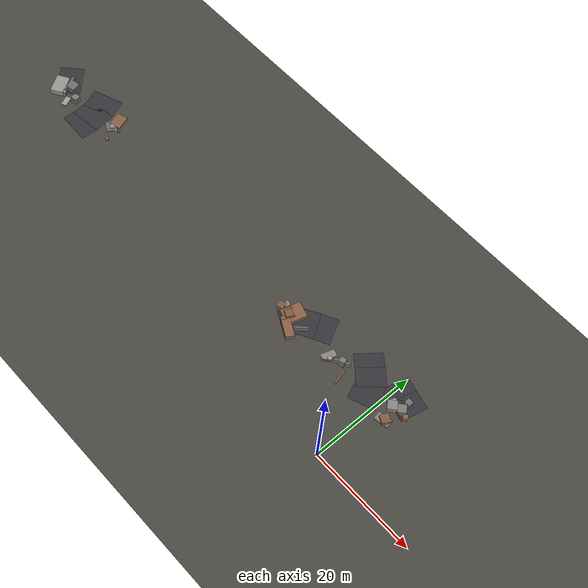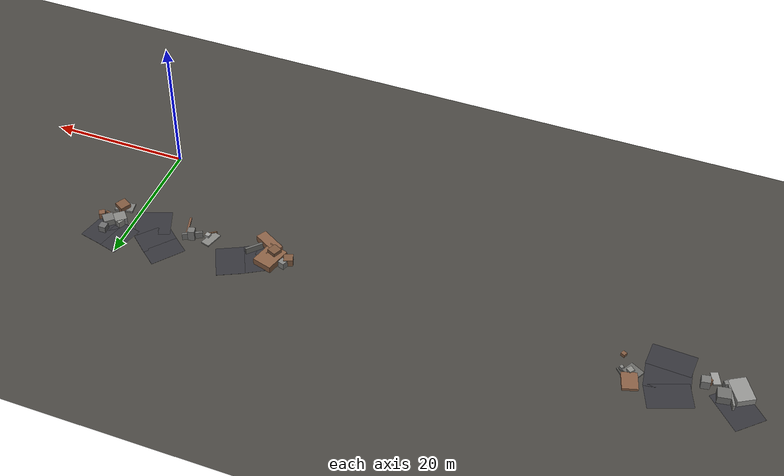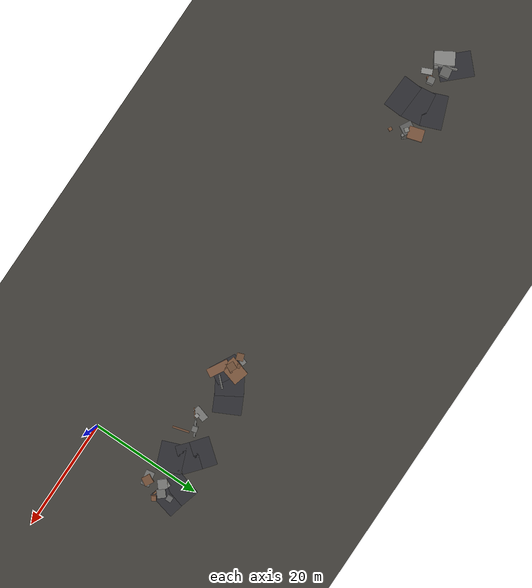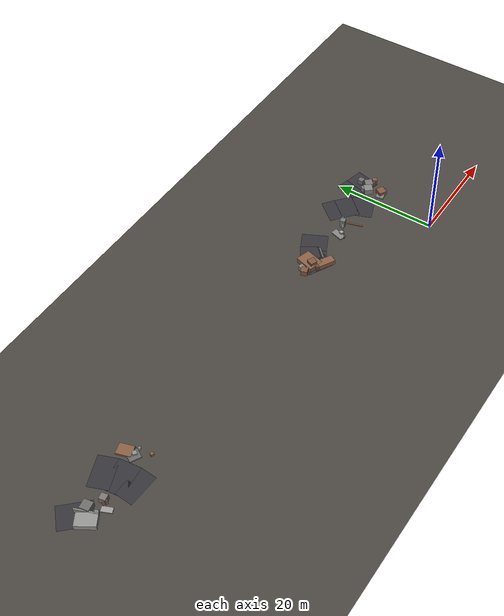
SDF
<sdf version="1.6">
 <world name="navitas_arena">
  <model name="ground_plane">
   <static>true</static>
   <link name="link">
    <collision name="collision">
     <geometry><plane><normal>0 0 1</normal><size>400 400</size></plane></geometry>
     <surface><friction><ode><mu>0.820</mu><mu2>0.820</mu2></ode></friction></surface>
    </collision>
    <visual name="visual">
     <cast_shadows>false</cast_shadows>
     <geometry><plane><normal>0 0 1</normal><size>400 400</size></plane></geometry>
     <material><ambient>0.280 0.270 0.250 1</ambient><diffuse>0.280 0.270 0.250 1</diffuse></material>
    </visual>
   </link>
  </model>
  <model name="road_kolay_2_15">
   <static>true</static>
   <pose>-84.983 16.264 0.040 0 0 0.760</pose>
   <link name="link">
    <collision name="col"><geometry><box><size>4.488 6.000 0.020</size></box></geometry></collision>
    <visual name="vis">
     <geometry><box><size>4.488 6.000 0.020</size></box></geometry>
     <material><ambient>0.20 0.20 0.22 1</ambient><diffuse>0.20 0.20 0.22 1</diffuse></material>
    </visual>
   </link>
  </model>
  <model name="road_kolay_3_18">
   <static>true</static>
   <pose>-75.747 11.690 0.040 0 0 1.523</pose>
   <link name="link">
    <collision name="col"><geometry><box><size>3.523 6.000 0.020</size></box></geometry></collision>
    <visual name="vis">
     <geometry><box><size>3.523 6.000 0.020</size></box></geometry>
     <material><ambient>0.20 0.20 0.22 1</ambient><diffuse>0.20 0.20 0.22 1</diffuse></material>
    </visual>
   </link>
  </model>
  <model name="road_kolay_3_19">
   <static>true</static>
   <pose>-75.890 14.583 0.040 0 0 1.700</pose>
   <link name="link">
    <collision name="col"><geometry><box><size>4.093 6.000 0.020</size></box></geometry></collision>
    <visual name="vis">
     <geometry><box><size>4.093 6.000 0.020</size></box></geometry>
     <material><ambient>0.20 0.20 0.22 1</ambient><diffuse>0.20 0.20 0.22 1</diffuse></material>
    </visual>
   </link>
  </model>
  <model name="road_kolay_3_20">
   <static>true</static>
   <pose>-76.620 17.519 0.040 0 0 1.941</pose>
   <link name="link">
    <collision name="col"><geometry><box><size>3.800 6.000 0.020</size></box></geometry></collision>
    <visual name="vis">
     <geometry><box><size>3.800 6.000 0.020</size></box></geometry>
     <material><ambient>0.20 0.20 0.22 1</ambient><diffuse>0.20 0.20 0.22 1</diffuse></material>
    </visual>
   </link>
  </model>
  <model name="blk_kolay_2_1_0">
   <static>true</static>
   <pose>-83.805 14.969 0.500 0 0 1.939</pose>
   <link name="link">
    <collision name="col"><geometry><box><size>4.080 0.279 1.000</size></box></geometry></collision>
    <visual name="vis">
     <geometry><box><size>4.080 0.279 1.000</size></box></geometry>
     <material><ambient>0.52 0.52 0.51 1</ambient><diffuse>0.52 0.52 0.51 1</diffuse></material>
    </visual>
   </link>
  </model>
  <model name="blk_kolay_2_1_2">
   <static>true</static>
   <pose>-84.924 13.983 0.500 0 0 2.114</pose>
   <link name="link">
    <collision name="col"><geometry><box><size>3.614 2.442 1.000</size></box></geometry></collision>
    <visual name="vis">
     <geometry><box><size>3.614 2.442 1.000</size></box></geometry>
     <material><ambient>0.57 0.57 0.56 1</ambient><diffuse>0.57 0.57 0.56 1</diffuse></material>
    </visual>
   </link>
  </model>
  <model name="blk_kolay_2_1_6">
   <static>true</static>
   <pose>-83.005 15.458 0.618 0 0 1.739</pose>
   <link name="link">
    <collision name="col"><geometry><box><size>1.735 1.735 1.236</size></box></geometry></collision>
    <visual name="vis">
     <geometry><box><size>1.735 1.735 1.236</size></box></geometry>
     <material><ambient>0.42 0.42 0.41 1</ambient><diffuse>0.42 0.42 0.41 1</diffuse></material>
    </visual>
   </link>
  </model>
  <model name="blk_kolay_2_1_8">
   <static>true</static>
   <pose>-82.990 13.513 0.500 0 0 2.143</pose>
   <link name="link">
    <collision name="col"><geometry><box><size>0.688 0.688 1.000</size></box></geometry></collision>
    <visual name="vis">
     <geometry><box><size>0.688 0.688 1.000</size></box></geometry>
     <material><ambient>0.47 0.47 0.46 1</ambient><diffuse>0.47 0.47 0.46 1</diffuse></material>
    </visual>
   </link>
  </model>
  <model name="deb_kolay_2">
   <static>true</static>
   <pose>-71.590 15.373 0.131 0 0 2.639</pose>
   <link name="link">
    <collision name="col"><geometry><box><size>2.124 1.834 0.262</size></box></geometry></collision>
    <visual name="vis">
     <geometry><box><size>2.124 1.834 0.262</size></box></geometry>
     <material><ambient>0.40 0.40 0.39 1</ambient><diffuse>0.40 0.40 0.39 1</diffuse></material>
    </visual>
   </link>
  </model>
  <model name="deb_kolay_49">
   <static>true</static>
   <pose>-81.547 12.712 0.108 0 0 1.983</pose>
   <link name="link">
    <collision name="col"><geometry><box><size>1.955 1.011 0.216</size></box></geometry></collision>
    <visual name="vis">
     <geometry><box><size>1.955 1.011 0.216</size></box></geometry>
     <material><ambient>0.60 0.60 0.59 1</ambient><diffuse>0.60 0.60 0.59 1</diffuse></material>
    </visual>
   </link>
  </model>
  <model name="deb_kolay_53">
   <static>true</static>
   <pose>-71.538 17.122 0.192 0 0 1.865</pose>
   <link name="link">
    <collision name="col"><geometry><box><size>2.695 2.127 0.383</size></box></geometry></collision>
    <visual name="vis">
     <geometry><box><size>2.695 2.127 0.383</size></box></geometry>
     <material><ambient>0.52 0.36 0.26 1</ambient><diffuse>0.52 0.36 0.26 1</diffuse></material>
    </visual>
   </link>
  </model>
  <model name="deb_kolay_70">
   <static>true</static>
   <pose>-69.808 13.044 0.232 0 0 1.111</pose>
   <link name="link">
    <collision name="col"><geometry><box><size>0.597 0.597 0.465</size></box></geometry></collision>
    <visual name="vis">
     <geometry><box><size>0.597 0.597 0.465</size></box></geometry>
     <material><ambient>0.50 0.35 0.25 1</ambient><diffuse>0.50 0.35 0.25 1</diffuse></material>
    </visual>
   </link>
  </model>
  <model name="deb_kolay_72">
   <static>true</static>
   <pose>-80.459 14.143 0.638 0 0 0.171</pose>
   <link name="link">
    <collision name="col"><geometry><box><size>1.190 1.190 1.276</size></box></geometry></collision>
    <visual name="vis">
     <geometry><box><size>1.190 1.190 1.276</size></box></geometry>
     <material><ambient>0.46 0.46 0.45 1</ambient><diffuse>0.46 0.46 0.45 1</diffuse></material>
    </visual>
   </link>
  </model>
  <model name="deb_kolay_84">
   <static>true</static>
   <pose>-71.231 15.438 0.288 0 0 2.475</pose>
   <link name="link">
    <collision name="col"><geometry><box><size>0.775 0.775 0.576</size></box></geometry></collision>
    <visual name="vis">
     <geometry><box><size>0.775 0.775 0.576</size></box></geometry>
     <material><ambient>0.54 0.54 0.52 1</ambient><diffuse>0.54 0.54 0.52 1</diffuse></material>
    </visual>
   </link>
  </model>
  <model name="deb_kolay_106">
   <static>true</static>
   <pose>-70.075 15.358 0.262 0 0 2.431</pose>
   <link name="link">
    <collision name="col"><geometry><box><size>0.460 0.460 0.524</size></box></geometry></collision>
    <visual name="vis">
     <geometry><box><size>0.460 0.460 0.524</size></box></geometry>
     <material><ambient>0.51 0.51 0.50 1</ambient><diffuse>0.51 0.51 0.50 1</diffuse></material>
    </visual>
   </link>
  </model>
  <model name="deb_kolay_137">
   <static>true</static>
   <pose>-70.527 16.609 0.125 0 0 2.326</pose>
   <link name="link">
    <collision name="col"><geometry><box><size>2.930 0.155 0.250</size></box></geometry></collision>
    <visual name="vis">
     <geometry><box><size>2.930 0.155 0.250</size></box></geometry>
     <material><ambient>0.44 0.44 0.43 1</ambient><diffuse>0.44 0.44 0.43 1</diffuse></material>
    </visual>
   </link>
  </model>
  <model name="chic_kolay_6">
   <static>true</static>
   <pose>-80.651 13.890 0.500 0 0 2.435</pose>
   <link name="link">
    <collision name="col"><geometry><box><size>0.953 0.953 1.000</size></box></geometry></collision>
    <visual name="vis">
     <geometry><box><size>0.953 0.953 1.000</size></box></geometry>
     <material><ambient>0.52 0.36 0.26 1</ambient><diffuse>0.52 0.36 0.26 1</diffuse></material>
    </visual>
   </link>
  </model>
  <model name="road_orta_1_16">
   <static>true</static>
   <pose>-20.249 12.833 0.040 0 0 1.082</pose>
   <link name="link">
    <collision name="col"><geometry><box><size>3.331 5.000 0.020</size></box></geometry></collision>
    <visual name="vis">
     <geometry><box><size>3.331 5.000 0.020</size></box></geometry>
     <material><ambient>0.20 0.20 0.22 1</ambient><diffuse>0.20 0.20 0.22 1</diffuse></material>
    </visual>
   </link>
  </model>
  <model name="road_orta_1_17">
   <static>true</static>
   <pose>-18.395 14.688 0.040 0 0 0.547</pose>
   <link name="link">
    <collision name="col"><geometry><box><size>3.905 5.000 0.020</size></box></geometry></collision>
    <visual name="vis">
     <geometry><box><size>3.905 5.000 0.020</size></box></geometry>
     <material><ambient>0.20 0.20 0.22 1</ambient><diffuse>0.20 0.20 0.22 1</diffuse></material>
    </visual>
   </link>
  </model>
  <model name="road_orta_1_18">
   <static>true</static>
   <pose>-15.749 16.153 0.040 0 0 0.465</pose>
   <link name="link">
    <collision name="col"><geometry><box><size>3.949 5.000 0.020</size></box></geometry></collision>
    <visual name="vis">
     <geometry><box><size>3.949 5.000 0.020</size></box></geometry>
     <material><ambient>0.20 0.20 0.22 1</ambient><diffuse>0.20 0.20 0.22 1</diffuse></material>
    </visual>
   </link>
  </model>
  <model name="road_orta_2_14">
   <static>true</static>
   <pose>-2.613 13.394 0.040 0 0 1.941</pose>
   <link name="link">
    <collision name="col"><geometry><box><size>4.406 5.000 0.020</size></box></geometry></collision>
    <visual name="vis">
     <geometry><box><size>4.406 5.000 0.020</size></box></geometry>
     <material><ambient>0.20 0.20 0.22 1</ambient><diffuse>0.20 0.20 0.22 1</diffuse></material>
    </visual>
   </link>
  </model>
  <model name="road_orta_2_15">
   <static>true</static>
   <pose>-4.235 15.866 0.040 0 0 2.438</pose>
   <link name="link">
    <collision name="col"><geometry><box><size>3.490 5.000 0.020</size></box></geometry></collision>
    <visual name="vis">
     <geometry><box><size>3.490 5.000 0.020</size></box></geometry>
     <material><ambient>0.20 0.20 0.22 1</ambient><diffuse>0.20 0.20 0.22 1</diffuse></material>
    </visual>
   </link>
  </model>
  <model name="road_orta_2_16">
   <static>true</static>
   <pose>-6.234 17.512 0.040 0 0 2.468</pose>
   <link name="link">
    <collision name="col"><geometry><box><size>3.490 5.000 0.020</size></box></geometry></collision>
    <visual name="vis">
     <geometry><box><size>3.490 5.000 0.020</size></box></geometry>
     <material><ambient>0.20 0.20 0.22 1</ambient><diffuse>0.20 0.20 0.22 1</diffuse></material>
    </visual>
   </link>
  </model>
  <model name="road_orta_3_24">
   <static>true</static>
   <pose>3.441 16.887 0.040 0 0 2.909</pose>
   <link name="link">
    <collision name="col"><geometry><box><size>3.560 5.000 0.020</size></box></geometry></collision>
    <visual name="vis">
     <geometry><box><size>3.560 5.000 0.020</size></box></geometry>
     <material><ambient>0.20 0.20 0.22 1</ambient><diffuse>0.20 0.20 0.22 1</diffuse></material>
    </visual>
   </link>
  </model>
  <model name="road_orta_3_25">
   <static>true</static>
   <pose>0.850 17.550 0.040 0 0 2.873</pose>
   <link name="link">
    <collision name="col"><geometry><box><size>3.589 5.000 0.020</size></box></geometry></collision>
    <visual name="vis">
     <geometry><box><size>3.589 5.000 0.020</size></box></geometry>
     <material><ambient>0.20 0.20 0.22 1</ambient><diffuse>0.20 0.20 0.22 1</diffuse></material>
    </visual>
   </link>
  </model>
  <model name="blk_orta_1_2_0">
   <static>true</static>
   <pose>-21.146 13.248 0.784 0 0 2.707</pose>
   <link name="link">
    <collision name="col"><geometry><box><size>1.366 1.366 1.569</size></box></geometry></collision>
    <visual name="vis">
     <geometry><box><size>1.366 1.366 1.569</size></box></geometry>
     <material><ambient>0.48 0.34 0.24 1</ambient><diffuse>0.48 0.34 0.24 1</diffuse></material>
    </visual>
   </link>
  </model>
  <model name="blk_orta_1_2_1">
   <static>true</static>
   <pose>-21.885 14.120 0.500 0 0 0.223</pose>
   <link name="link">
    <collision name="col"><geometry><box><size>0.718 0.718 1.000</size></box></geometry></collision>
    <visual name="vis">
     <geometry><box><size>0.718 0.718 1.000</size></box></geometry>
     <material><ambient>0.47 0.33 0.23 1</ambient><diffuse>0.47 0.33 0.23 1</diffuse></material>
    </visual>
   </link>
  </model>
  <model name="blk_orta_1_2_2">
   <static>true</static>
   <pose>-22.861 14.408 0.500 0 0 2.817</pose>
   <link name="link">
    <collision name="col"><geometry><box><size>0.949 0.949 1.000</size></box></geometry></collision>
    <visual name="vis">
     <geometry><box><size>0.949 0.949 1.000</size></box></geometry>
     <material><ambient>0.50 0.50 0.49 1</ambient><diffuse>0.50 0.50 0.49 1</diffuse></material>
    </visual>
   </link>
  </model>
  <model name="blk_orta_1_2_3">
   <static>true</static>
   <pose>-17.999 13.156 0.500 0 0 0.816</pose>
   <link name="link">
    <collision name="col"><geometry><box><size>2.528 0.319 1.000</size></box></geometry></collision>
    <visual name="vis">
     <geometry><box><size>2.528 0.319 1.000</size></box></geometry>
     <material><ambient>0.41 0.41 0.40 1</ambient><diffuse>0.41 0.41 0.40 1</diffuse></material>
    </visual>
   </link>
  </model>
  <model name="blk_orta_1_2_4">
   <static>true</static>
   <pose>-20.802 12.752 0.500 0 0 1.107</pose>
   <link name="link">
    <collision name="col"><geometry><box><size>2.508 0.384 1.000</size></box></geometry></collision>
    <visual name="vis">
     <geometry><box><size>2.508 0.384 1.000</size></box></geometry>
     <material><ambient>0.46 0.32 0.23 1</ambient><diffuse>0.46 0.32 0.23 1</diffuse></material>
    </visual>
   </link>
  </model>
  <model name="blk_orta_1_2_5">
   <static>true</static>
   <pose>-23.310 13.545 0.526 0 0 1.918</pose>
   <link name="link">
    <collision name="col"><geometry><box><size>1.274 1.274 1.052</size></box></geometry></collision>
    <visual name="vis">
     <geometry><box><size>1.274 1.274 1.052</size></box></geometry>
     <material><ambient>0.48 0.34 0.24 1</ambient><diffuse>0.48 0.34 0.24 1</diffuse></material>
    </visual>
   </link>
  </model>
  <model name="blk_orta_1_2_6">
   <static>true</static>
   <pose>-19.649 11.595 0.500 0 0 2.629</pose>
   <link name="link">
    <collision name="col"><geometry><box><size>3.914 1.537 1.000</size></box></geometry></collision>
    <visual name="vis">
     <geometry><box><size>3.914 1.537 1.000</size></box></geometry>
     <material><ambient>0.53 0.37 0.27 1</ambient><diffuse>0.53 0.37 0.27 1</diffuse></material>
    </visual>
   </link>
  </model>
  <model name="blk_orta_1_2_7">
   <static>true</static>
   <pose>-20.815 14.042 0.500 0 0 1.297</pose>
   <link name="link">
    <collision name="col"><geometry><box><size>3.724 2.874 1.000</size></box></geometry></collision>
    <visual name="vis">
     <geometry><box><size>3.724 2.874 1.000</size></box></geometry>
     <material><ambient>0.53 0.37 0.26 1</ambient><diffuse>0.53 0.37 0.26 1</diffuse></material>
    </visual>
   </link>
  </model>
  <model name="blk_orta_3_2_0">
   <static>true</static>
   <pose>4.671 14.782 0.500 0 0 2.136</pose>
   <link name="link">
    <collision name="col"><geometry><box><size>0.847 0.847 1.000</size></box></geometry></collision>
    <visual name="vis">
     <geometry><box><size>0.847 0.847 1.000</size></box></geometry>
     <material><ambient>0.51 0.35 0.25 1</ambient><diffuse>0.51 0.35 0.25 1</diffuse></material>
    </visual>
   </link>
  </model>
  <model name="blk_orta_3_2_1">
   <static>true</static>
   <pose>2.116 15.078 0.500 0 0 3.109</pose>
   <link name="link">
    <collision name="col"><geometry><box><size>2.148 0.305 1.000</size></box></geometry></collision>
    <visual name="vis">
     <geometry><box><size>2.148 0.305 1.000</size></box></geometry>
     <material><ambient>0.46 0.32 0.23 1</ambient><diffuse>0.46 0.32 0.23 1</diffuse></material>
    </visual>
   </link>
  </model>
  <model name="blk_orta_3_2_3">
   <static>true</static>
   <pose>1.571 15.349 0.500 0 0 2.722</pose>
   <link name="link">
    <collision name="col"><geometry><box><size>0.961 0.961 1.000</size></box></geometry></collision>
    <visual name="vis">
     <geometry><box><size>0.961 0.961 1.000</size></box></geometry>
     <material><ambient>0.56 0.56 0.54 1</ambient><diffuse>0.56 0.56 0.54 1</diffuse></material>
    </visual>
   </link>
  </model>
  <model name="blk_orta_3_2_4">
   <static>true</static>
   <pose>2.806 14.690 0.500 0 0 2.918</pose>
   <link name="link">
    <collision name="col"><geometry><box><size>2.852 0.281 1.000</size></box></geometry></collision>
    <visual name="vis">
     <geometry><box><size>2.852 0.281 1.000</size></box></geometry>
     <material><ambient>0.48 0.34 0.24 1</ambient><diffuse>0.48 0.34 0.24 1</diffuse></material>
    </visual>
   </link>
  </model>
  <model name="blk_orta_3_2_5">
   <static>true</static>
   <pose>3.313 15.399 0.502 0 0 0.717</pose>
   <link name="link">
    <collision name="col"><geometry><box><size>1.520 1.520 1.004</size></box></geometry></collision>
    <visual name="vis">
     <geometry><box><size>1.520 1.520 1.004</size></box></geometry>
     <material><ambient>0.46 0.46 0.45 1</ambient><diffuse>0.46 0.46 0.45 1</diffuse></material>
    </visual>
   </link>
  </model>
  <model name="blk_orta_3_2_7">
   <static>true</static>
   <pose>3.237 17.009 0.500 0 0 0.012</pose>
   <link name="link">
    <collision name="col"><geometry><box><size>1.039 1.039 1.000</size></box></geometry></collision>
    <visual name="vis">
     <geometry><box><size>1.039 1.039 1.000</size></box></geometry>
     <material><ambient>0.42 0.42 0.42 1</ambient><diffuse>0.42 0.42 0.42 1</diffuse></material>
    </visual>
   </link>
  </model>
  <model name="deb_orta_37">
   <static>true</static>
   <pose>-7.494 12.076 0.111 0 0 1.843</pose>
   <link name="link">
    <collision name="col"><geometry><box><size>2.971 0.289 0.221</size></box></geometry></collision>
    <visual name="vis">
     <geometry><box><size>2.971 0.289 0.221</size></box></geometry>
     <material><ambient>0.49 0.34 0.25 1</ambient><diffuse>0.49 0.34 0.25 1</diffuse></material>
    </visual>
   </link>
  </model>
  <model name="deb_orta_42">
   <static>true</static>
   <pose>3.034 11.786 0.436 0 0 2.479</pose>
   <link name="link">
    <collision name="col"><geometry><box><size>0.912 0.912 0.872</size></box></geometry></collision>
    <visual name="vis">
     <geometry><box><size>0.912 0.912 0.872</size></box></geometry>
     <material><ambient>0.44 0.44 0.43 1</ambient><diffuse>0.44 0.44 0.43 1</diffuse></material>
    </visual>
   </link>
  </model>
  <model name="deb_orta_59">
   <static>true</static>
   <pose>-10.943 13.037 0.283 0 0 1.387</pose>
   <link name="link">
    <collision name="col"><geometry><box><size>0.661 0.661 0.567</size></box></geometry></collision>
    <visual name="vis">
     <geometry><box><size>0.661 0.661 0.567</size></box></geometry>
     <material><ambient>0.61 0.61 0.60 1</ambient><diffuse>0.61 0.61 0.60 1</diffuse></material>
    </visual>
   </link>
  </model>
  <model name="deb_orta_67">
   <static>true</static>
   <pose>2.745 12.195 0.460 0 0 1.072</pose>
   <link name="link">
    <collision name="col"><geometry><box><size>1.562 1.562 0.920</size></box></geometry></collision>
    <visual name="vis">
     <geometry><box><size>1.562 1.562 0.920</size></box></geometry>
     <material><ambient>0.49 0.34 0.24 1</ambient><diffuse>0.49 0.34 0.24 1</diffuse></material>
    </visual>
   </link>
  </model>
  <model name="deb_orta_84">
   <static>true</static>
   <pose>-11.529 13.372 0.106 0 0 1.283</pose>
   <link name="link">
    <collision name="col"><geometry><box><size>2.548 1.287 0.212</size></box></geometry></collision>
    <visual name="vis">
     <geometry><box><size>2.548 1.287 0.212</size></box></geometry>
     <material><ambient>0.51 0.51 0.50 1</ambient><diffuse>0.51 0.51 0.50 1</diffuse></material>
    </visual>
   </link>
  </model>
  <model name="deb_orta_86">
   <static>true</static>
   <pose>2.534 12.044 0.150 0 0 0.174</pose>
   <link name="link">
    <collision name="col"><geometry><box><size>2.604 1.554 0.299</size></box></geometry></collision>
    <visual name="vis">
     <geometry><box><size>2.604 1.554 0.299</size></box></geometry>
     <material><ambient>0.48 0.48 0.47 1</ambient><diffuse>0.48 0.48 0.47 1</diffuse></material>
    </visual>
   </link>
  </model>
  <model name="deb_orta_121">
   <static>true</static>
   <pose>-11.106 12.430 0.187 0 0 0.649</pose>
   <link name="link">
    <collision name="col"><geometry><box><size>1.720 0.155 0.373</size></box></geometry></collision>
    <visual name="vis">
     <geometry><box><size>1.720 0.155 0.373</size></box></geometry>
     <material><ambient>0.47 0.33 0.23 1</ambient><diffuse>0.47 0.33 0.23 1</diffuse></material>
    </visual>
   </link>
  </model>
  <model name="deb_orta_154">
   <static>true</static>
   <pose>-8.921 13.974 0.791 0 0 0.241</pose>
   <link name="link">
    <collision name="col"><geometry><box><size>0.980 0.980 1.582</size></box></geometry></collision>
    <visual name="vis">
     <geometry><box><size>0.980 0.980 1.582</size></box></geometry>
     <material><ambient>0.46 0.46 0.45 1</ambient><diffuse>0.46 0.46 0.45 1</diffuse></material>
    </visual>
   </link>
  </model>
  <model name="chic_orta_5">
   <static>true</static>
   <pose>1.861 14.675 0.535 0 0 0.710</pose>
   <link name="link">
    <collision name="col"><geometry><box><size>1.671 1.671 1.070</size></box></geometry></collision>
    <visual name="vis">
     <geometry><box><size>1.671 1.671 1.070</size></box></geometry>
     <material><ambient>0.51 0.51 0.50 1</ambient><diffuse>0.51 0.51 0.50 1</diffuse></material>
    </visual>
   </link>
  </model>
  <model name="chic_orta_6">
   <static>true</static>
   <pose>-8.996 13.962 0.500 0 0 0.508</pose>
   <link name="link">
    <collision name="col"><geometry><box><size>2.857 0.345 1.000</size></box></geometry></collision>
    <visual name="vis">
     <geometry><box><size>2.857 0.345 1.000</size></box></geometry>
     <material><ambient>0.43 0.43 0.42 1</ambient><diffuse>0.43 0.43 0.42 1</diffuse></material>
    </visual>
   </link>
  </model>
 </world>
</sdf>
